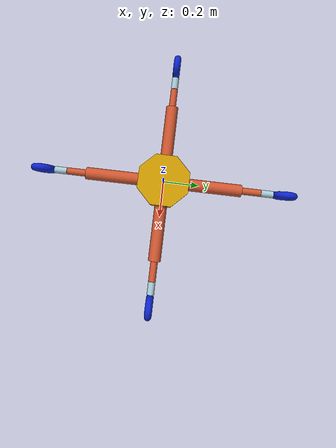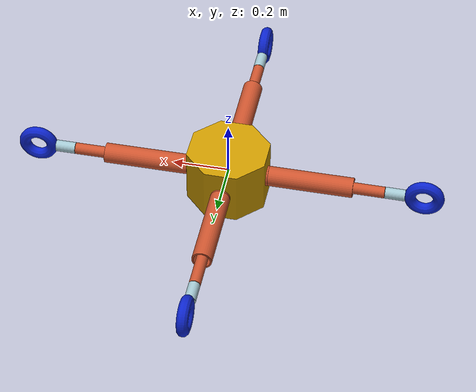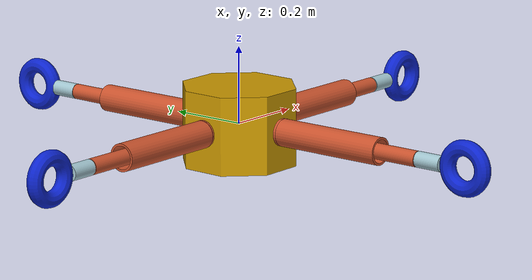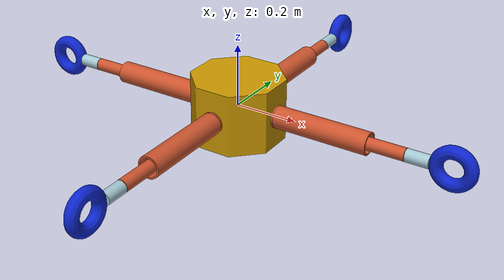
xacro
<?xml version="1.0" ?>
<robot name="starbot" xmlns:xacro="http://ros.org/wiki/xacro">

    <!--- new_gazebo_version should be false by default because pinocchio needs it!-->
    <xacro:arg name="robot_name" default="starbot"/>
    <xacro:arg name="new_gazebo_version" default="false"/>

    <xacro:include filename="$(find starbot_description)/gazebo/gazebo.urdf.xacro">
        <xacro:arg name="task_period" value="$(arg task_period)"/>
	<xacro:arg name="robot_name" value="$(arg robot_name)"/>
    </xacro:include>

    <xacro:include filename="$(find starbot_description)/urdfs/leg.xacro"/>

    <!-- BASE LINK -->
    <!-- floating type is supported in older versions of Gazebo. In new Gazebo if a link has no parent, it is supposed to be attached to a floating joint -->

    <xacro:unless value="$(arg new_gazebo_version)">
        <!-- Floating-base Joint -->
        <link name="world"/>
        <joint name="floating_base_joint" type="floating" >
            <origin rpy="0 0 0" xyz="0 0 0"/>
            <parent link="world"/>
            <child link="base_link"/>
        </joint>
    </xacro:unless>

    <link name="base_link" />
    <joint name="floating_base" type="fixed">
        <origin rpy="0 0 0" xyz="0 0 0"/>
        <parent link="base_link"/>
        <child link="trunk"/>
    </joint>

    <link name="trunk">
        <inertial>
        <origin xyz="0 0 0" rpy="0 0 0"/>
        <mass value="10.0"/>
        <inertia ixx="0.16574" ixy="0" ixz="0" iyy="0.16574" iyz="0" izz="0.24057"/>
      </inertial>
      <visual>
        <origin xyz="0 0 0" rpy="0 0 0"/>
        <geometry>
           <mesh filename="package://starbot_description/meshes/stl/octagon.stl"/>
        </geometry>
        <material name="yellow">
        	<color rgba="0.8 0.6 0.0 1.0"/>
        </material>
      </visual>
      <collision>
            <origin xyz="0 0 0" rpy="0 0 0" />
            <geometry>
                <mesh filename="package://starbot_description/meshes/stl/octagon.stl"/>
            </geometry>
        </collision>

    </link>

    <!-- if we imagine to place a line between the two positive direction of axis x and y -->

    <!-- LEFT FRONT LEG = leg align with axis y -->
     <xacro:leg
    	name="lf"
    	parent="trunk"
    	is_front="true"
    	is_right="false"
    	robot_name="$(arg robot_name)">
    </xacro:leg>

    <!-- RIGHT FRONT LEG = leg align with axis x -->
    <xacro:leg
    	name="rf"
    	parent="trunk"
    	is_front="true"
    	is_right="true"
    	robot_name="$(arg robot_name)">
    </xacro:leg>

    <!-- LEFT HIND LEG = leg align with axis neg x -->
     <xacro:leg
    	name="lh"
    	parent="trunk"
    	is_front="false"
    	is_right="false"
    	robot_name="$(arg robot_name)">
    </xacro:leg>

    <!-- RIGHT HIND LEG = leg align with axis neg y -->
    <xacro:leg
    	name="rh"
    	parent="trunk"
    	is_front="false"
    	is_right="true"
    	robot_name="$(arg robot_name)">
    </xacro:leg>

</robot>

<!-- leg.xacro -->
<robot xmlns:xacro="http://ros.org/wiki/xacro" name="solo">

    <!-- Things that are needed only for Gazebo (not the physical robot). These include sensor and controller plugin specifications -->
    <xacro:include filename="$(find starbot_description)/urdfs/leg.transmission.xacro"/>
    <xacro:include filename="$(find starbot_description)/urdfs/leg.gazebo.xacro"/>

    <!-- These are absoulte distance value, the sign are decided below -->

    <xacro:property name="MAX_TORQUE" value="300" />
    <xacro:property name="MAX_FORCE_LOWERLEG" value="10000" />
    <xacro:property name="SHOULDER" value="0.14142" />
    <xacro:property name="VELOCITY" value="0" />
    <xacro:property name="UPPER_LEG" value="0.15312" />
    <xacro:property name="LOWER_LEG_pos" value="0.02546" />
    <xacro:property name="PRE_WHEEL_pos" value="0.16173" />
    <xacro:property name="WHEEL_pos" value="0.10183" />

    <material name="orange">
     <color rgba="0.800 0.331 0.183 1.0"/>
    </material>

    <material name="blue">
     <color rgba="0.051 0.144 0.800 1.0"/>
    </material>

    <material name="gray">
     <color rgba="0.638 0.779 0.819 1.0"/>
    </material>

    <!-- This macro has for purpose to define a leg -->
    <xacro:macro name="leg" params="name parent is_front is_right robot_name">

        <!-- Starbot 1.0 -->

        <!--BS_JOINT: Joint between the body and the shoulder -->
        <joint name="${name}_bs_joint" type="revolute">
            <parent link="${parent}"/>
            <child link="${name}_shoulder"/>

            <!-- limit and placement of the joint -->
            <xacro:if value="${is_front}">
                <xacro:unless value="${is_right}">
                    <!-- LF_UPPER_LEG_JOINT -->
                    <axis xyz="1 0 0"/>
                    <limit effort="${MAX_TORQUE}" lower="-0.785" upper="0.785" velocity="${VELOCITY}"/>
                    <origin xyz="0 ${SHOULDER}  0" rpy="0 0 0" />
                </xacro:unless>
                <xacro:if value="${is_right}">
                    <!-- RF_UPPER_LEG_JOINT -->
                    <axis xyz="0 1 0"/>
                    <limit effort="${MAX_TORQUE}" lower="-0.785" upper="0.785" velocity="${VELOCITY}"/>
                    <origin xyz="${SHOULDER} 0 0" rpy="0 0 0" />
                </xacro:if>
            </xacro:if>
            <xacro:unless value="${is_front}">
                <xacro:unless value="${is_right}">
                    <!-- LH_UPPER_LEG_JOINT -->
                    <axis xyz="0 -1 0"/>
                    <limit effort="${MAX_TORQUE}" lower="-0.785" upper="0.785" velocity="${VELOCITY}"/>
                    <origin xyz="-${SHOULDER} 0 0" rpy="0 0 0" />
                </xacro:unless>
                <xacro:if value="${is_right}">
                    <!-- RH_UPPER_LEG_JOINT -->
                    <axis xyz="-1 0 0"/>
                    <limit effort="${MAX_TORQUE}" lower="-0.785" upper="0.785" velocity="${VELOCITY}"/>
                    <origin xyz="0 -${SHOULDER} 0" rpy="0 0 0" />
                </xacro:if>
            </xacro:unless>

            <!-- pybullet simulation parameters -->
            <dynamics damping="0.0" friction="0.0"/>
        </joint>

        <!-- SHOULDER ASSEMBLY -->
        <link name="${name}_shoulder">
            <!-- create a dummy shoulder_assembly link to join the two joints -->
            <!--VISUAL-->
            <visual>
            <origin xyz="0 0 0" rpy="0 0 0" />
                <xacro:if value="${is_front}">
                    <xacro:unless value="${is_right}">
                        <!-- LF SHOULDER -->
                        <geometry>
                            <mesh filename="package://starbot_description/meshes/stl/shoulder_y.stl"/>
                        </geometry>
                    </xacro:unless>
                <xacro:if value="${is_right}">
                    <!-- RF SHOULDER-->
                    <geometry>
                        <mesh filename="package://starbot_description/meshes/stl/shoulder_x.stl"/>
                    </geometry>
                    </xacro:if>
                </xacro:if>
                <xacro:unless value="${is_front}">
                    <xacro:unless value="${is_right}">
                        <!-- LH SHOULDER -->
                        <geometry>
                            <mesh filename="package://starbot_description/meshes/stl/shoulder_nx.stl"/>
                        </geometry>
                    </xacro:unless>
                    <xacro:if value="${is_right}">
                        <!-- RH SHOULDER -->
                        <geometry>
                            <mesh filename="package://starbot_description/meshes/stl/shoulder_ny.stl"/>
                        </geometry>
                    </xacro:if>
                </xacro:unless>
                <material name="orange"/>
            </visual>

            <!--COLLISION-->
            <collision>
                <origin xyz="0 0 0" rpy="0 0 0" />
                <xacro:if value="${is_front}">
                    <xacro:unless value="${is_right}">
                        <!-- LF_BS -->
                        <geometry>
                            <mesh filename="package://starbot_description/meshes/stl/shoulder_y.stl"/>
                        </geometry>
                    </xacro:unless>
                    <xacro:if value="${is_right}">
                        <!-- RF_BS -->
                        <geometry>
                            <mesh filename="package://starbot_description/meshes/stl/shoulder_x.stl"/>
                        </geometry>
                    </xacro:if>
                </xacro:if>
                <xacro:unless value="${is_front}">
                    <xacro:unless value="${is_right}">
                        <!-- LH_BS -->
                        <geometry>
                            <mesh filename="package://starbot_description/meshes/stl/shoulder_nx.stl"/>
                        </geometry>
                    </xacro:unless>
                    <xacro:if value="${is_right}">
                        <!-- RH_BS -->
                        <geometry>
                            <mesh filename="package://starbot_description/meshes/stl/shoulder_ny.stl"/>
                        </geometry>
                    </xacro:if>
                </xacro:unless>
            </collision>

            <!--INERTIAL -->
            <inertial>
                <origin xyz="0 0 0" rpy="0 0 0" />
                <mass value="0.0001"/>
                <inertia ixx="0" ixy="0" ixz="0" iyy="0" iyz="0" izz="0"/>
            </inertial>
        </link>

        <!--UPPER LEG JOINT-->

        <joint name="${name}_upper_leg_joint" type="revolute">
            <parent link="${name}_shoulder"/>
            <child link="${name}_upperleg"/>

            <!-- joints rotates around the y-axis -->

            <!-- limit and placement of the joint -->
            <xacro:if value="${is_front}">
                <xacro:unless value="${is_right}">
                    <!-- LF_UPPER_LEG_JOINT -->
                    <axis xyz="0 0 1"/>
                    <limit effort="${MAX_TORQUE}" lower="-0.785" upper="0.785" velocity="${VELOCITY}"/>
                    <origin xyz="0 ${UPPER_LEG} 0" rpy="0 0 0" />
                </xacro:unless>
                <xacro:if value="${is_right}">
                    <!-- RF_UPPER_LEG_JOINT -->
                    <axis xyz="0 0 1"/>
                    <limit effort="${MAX_TORQUE}" lower="-0.785" upper="0.785" velocity="${VELOCITY}"/>
                    <origin xyz="${UPPER_LEG} 0 0" rpy="0 0 0" />
                </xacro:if>
            </xacro:if>
            <xacro:unless value="${is_front}">
                <xacro:unless value="${is_right}">
                    <!-- LH_UPPER_LEG_JOINT -->
                    <axis xyz="0 0 1"/>
                    <limit effort="${MAX_TORQUE}" lower="-0.785" upper="0.785" velocity="${VELOCITY}"/>
                    <origin xyz="-${UPPER_LEG} 0 0" rpy="0 0 0" />
                </xacro:unless>
                <xacro:if value="${is_right}">
                    <!-- RH_UPPER_LEG_JOINT -->
                    <axis xyz="0 0 1"/>
                    <limit effort="${MAX_TORQUE}" lower="-0.785" upper="0.785" velocity="${VELOCITY}"/>
                    <origin xyz="0 -${UPPER_LEG} 0" rpy="0 0 0" />
                </xacro:if>
            </xacro:unless>

            <!-- pybullet simulation parameters -->
            <dynamics damping="0.0" friction="0.0"/>
        </joint>

        <!-- UPPER LEG ASSEMBLY -->
        <link name="${name}_upperleg">
            <!--VISUAL-->
            <visual>
                <origin xyz="0 0 0" rpy="0 0 0" />
                <xacro:if value="${is_front}">
                    <xacro:unless value="${is_right}">
			<!-- LF UPPER_LEG -->
                        <geometry>
                            <mesh filename="package://starbot_description/meshes/stl/upper_leg_y.stl"/>
                        </geometry>
                    </xacro:unless>
                    <xacro:if value="${is_right}">
			<!-- RF UPPER_LEG-->
                        <geometry>
                            <mesh filename="package://starbot_description/meshes/stl/upper_leg_x.stl"/>
                        </geometry>
                        </xacro:if>
                </xacro:if>
                <xacro:unless value="${is_front}">
                    <xacro:unless value="${is_right}">
			<!-- LH UPPER_LEG -->
                        <geometry>
                            <mesh filename="package://starbot_description/meshes/stl/upper_leg_nx.stl"/>
                        </geometry>
                    </xacro:unless>
                    <xacro:if value="${is_right}">
		        <!-- RH UPPER_LEG -->
                        <geometry>
                            <mesh filename="package://starbot_description/meshes/stl/upper_leg_ny.stl"/>
                        </geometry>
                    </xacro:if>
                </xacro:unless>
                <material name="orange"/>
            </visual>

            <!--COLLISION-->
            <collision>

                <xacro:if value="${is_front}">
                    <xacro:unless value="${is_right}">
                        <!-- LF UPPER_LEG -->
			<origin xyz="0 0 0" rpy="0 0 0" />
                        <geometry>
                            <mesh filename="package://starbot_description/meshes/stl/upper_leg_y.stl"/>
                        </geometry>
                    </xacro:unless>
                    <xacro:if value="${is_right}">
                        <!-- RF UPPER_LEG -->
       			<origin xyz="0 0 0" rpy="0 0 0" />
                        <geometry>
                            <mesh filename="package://starbot_description/meshes/stl/upper_leg_x.stl"/>
                        </geometry>
                    </xacro:if>
                </xacro:if>
                <xacro:unless value="${is_front}">
                    <xacro:unless value="${is_right}">
                        <!-- LH UPPER_LEG -->
			<origin xyz="0 0  0" rpy="0 0 0" />
                        <geometry>
                            <mesh filename="package://starbot_description/meshes/stl/upper_leg_nx.stl"/>
                        </geometry>
                    </xacro:unless>
                    <xacro:if value="${is_right}">
                        <!-- RH UPPER_LEG-->
			<origin xyz=" 0 0 0" rpy="0 0 0" />

                        <geometry>
                            <mesh filename="package://starbot_description/meshes/stl/upper_leg_ny.stl"/>
                        </geometry>
                    </xacro:if>
                </xacro:unless>
            </collision>

            <!-- UPPER LEG LINK INERTIAL -->
            <xacro:if value="${is_front}">
                    <xacro:unless value="${is_right}">
                        <!-- LF UPPER_LEG -->
                        <inertial>
                    		<origin xyz="0 ${UPPER_LEG} 0" rpy="0 0 0"/>
                    		<mass value="2.3"/>
                    		<inertia ixx="0.01246" ixy="0" ixz="0" iyy="0.00148" iyz="0" izz="0.01246"/>
                	</inertial>
                    </xacro:unless>
                    <xacro:if value="${is_right}">
                        <!-- RF UPPER_LEG -->
                        <inertial>
                    		<origin xyz="${UPPER_LEG} 0 0" rpy="0 0 0"/>
                    		<mass value="2.3"/>
                    		<inertia ixx="0.00148" ixy="0" ixz="0" iyy="0.01246" iyz="0" izz="0.00148"/>
                	</inertial>
                    </xacro:if>
                </xacro:if>
                <xacro:unless value="${is_front}">
                    <xacro:unless value="${is_right}">
                        <!-- LH UPPER_LEG -->
                        <inertial>
                    		<origin xyz="-${UPPER_LEG} 0 0" rpy="0 0 0"/>
                    		<mass value="2.3"/>
                    		<inertia ixx="0.00148" ixy="0" ixz="0" iyy="0.01246" iyz="0" izz="0.00148"/>
                	</inertial>
                    </xacro:unless>
                    <xacro:if value="${is_right}">
                        <!-- RH UPPER_LEG-->
                        <inertial>
                    		<origin xyz="0 -${UPPER_LEG} 0" rpy="0 0 0"/>
                    		<mass value="2.3"/>
                    		<inertia ixx="0.01246" ixy="0" ixz="0" iyy="0.00148" iyz="0" izz="0.01246"/>
                	</inertial>
                    </xacro:if>
                </xacro:unless>

        </link>

        <!--LOWER LEG JOINT-->

        <joint name="${name}_lower_leg_joint" type="prismatic">
            <parent link="${name}_upperleg"/>
            <child link="${name}_lowerleg"/>

            <!-- limit and placement of the joint -->
            <xacro:if value="${is_front}">
                <xacro:unless value="${is_right}">
                    <!-- LF_LOWER_LEG_JOINT -->
                    <axis xyz="0 1 0"/>
                    <limit effort="${MAX_FORCE_LOWERLEG}" lower="0.02" upper="0.20" velocity="${VELOCITY}"/>
                    <origin xyz="0 ${LOWER_LEG_pos} 0" rpy="0 0 0" />
                </xacro:unless>
                <xacro:if value="${is_right}">
                    <axis xyz="1 0 0"/>
                    <!-- RF_LOWER_LEG_JOINT -->
                    <limit effort="${MAX_FORCE_LOWERLEG}" lower="0.02" upper="0.20" velocity="${VELOCITY}"/>
                    <origin xyz="${LOWER_LEG_pos} 0 0" rpy="0 0 0" />
                </xacro:if>
            </xacro:if>
            <xacro:unless value="${is_front}">
                <xacro:unless value="${is_right}">
                    <axis xyz="-1 0 0"/>
                    <!-- LH_LOWER_LEG_JOINT -->
                    <limit effort="${MAX_FORCE_LOWERLEG}" lower="0.02" upper="0.20" velocity="${VELOCITY}"/>
                    <origin xyz="-${LOWER_LEG_pos} 0 0" rpy="0 0 0" />
                </xacro:unless>
                <xacro:if value="${is_right}">
                    <!-- RF_LOWER_LEG_JOINT -->
                    <axis xyz="0 -1 0"/>
                    <limit effort="${MAX_FORCE_LOWERLEG}" lower="0.02" upper="0.20" velocity="${VELOCITY}"/>
                    <origin xyz="0 -${LOWER_LEG_pos} 0" rpy="0 0 0" />
                </xacro:if>
            </xacro:unless>

            <!-- pybullet simulation parameters -->
            <dynamics damping="0.0" friction="0.0"/>
        </joint>

        <!-- LOWER LEG ASSEMBLY -->
        <link name="${name}_lowerleg">
            <!--VISUAL-->
            <visual>
		<origin xyz="0 0 0" rpy="0 0 0" />
                <xacro:if value="${is_front}">
                    <xacro:unless value="${is_right}">
                        <!-- LF LOWER_LEG -->
                        <geometry>
                            <mesh filename="package://starbot_description/meshes/stl/lower_leg_y.stl"/>
                        </geometry>
                    </xacro:unless>
                    <xacro:if value="${is_right}">
                        <!-- RF LOWER_LEG-->
                        <geometry>
                            <mesh filename="package://starbot_description/meshes/stl/lower_leg_x.stl"/>
                        </geometry>
                    </xacro:if>
                </xacro:if>
                <xacro:unless value="${is_front}">
                    <xacro:unless value="${is_right}">
                        <!-- LH LOWER_LEG -->
                        <geometry>
                            <mesh filename="package://starbot_description/meshes/stl/lower_leg_nx.stl"/>
                        </geometry>
                    </xacro:unless>
                    <xacro:if value="${is_right}">
                        <!-- RH LOWER_LEG -->
                        <geometry>
                            <mesh filename="package://starbot_description/meshes/stl/lower_leg_ny.stl"/>
                        </geometry>
                    </xacro:if>
                </xacro:unless>
                <material name="orange"/>
            </visual>

            <!--COLLISION-->
            <collision>
                <origin xyz="0 0 0" rpy="0 0 0" />
                <xacro:if value="${is_front}">
                    <xacro:unless value="${is_right}">
                        <!-- LF LOWER_LEG -->
                        <geometry>
                            <mesh filename="package://starbot_description/meshes/stl/lower_leg_y.stl"/>
                        </geometry>
                    </xacro:unless>
                    <xacro:if value="${is_right}">
                        <!-- RF LOWER_LEG -->
                        <geometry>
                            <mesh filename="package://starbot_description/meshes/stl/lower_leg_x.stl"/>
                        </geometry>
                    </xacro:if>
                </xacro:if>
                <xacro:unless value="${is_front}">
                    <xacro:unless value="${is_right}">
                        <!-- LH LOWER_LEG -->
                        <geometry>
                            <mesh filename="package://starbot_description/meshes/stl/lower_leg_nx.stl"/>
                        </geometry>
                    </xacro:unless>
                    <xacro:if value="${is_right}">
                        <!-- RH LOWER_LEG-->
                        <geometry>
                            <mesh filename="package://starbot_description/meshes/stl/lower_leg_ny.stl"/>
                        </geometry>
                    </xacro:if>
                </xacro:unless>
            </collision>

            <!-- LOWER LEG LINK INERTIAL -->
            <xacro:if value="${is_front}">
                    <xacro:unless value="${is_right}">
                        <!-- LF LOWER_LEG -->
                        <inertial>
                    		<origin xyz="0 ${LOWER_LEG_pos} 0" rpy="0 0 0"/>
                    		<mass value="2.36"/>
                    		<inertia ixx="0.00767" ixy="0" ixz="0" iyy="0.00056" iyz="0" izz="0.00767"/>
                	</inertial>
                    </xacro:unless>
                    <xacro:if value="${is_right}">
                        <!-- RF LOWER_LEG -->
                        <inertial>
                    		<origin xyz="${LOWER_LEG_pos} 0 0" rpy="0 0 0"/>
                    		<mass value="2.36"/>
                    		<inertia ixx="0.00056" ixy="0" ixz="0" iyy="0.00767" iyz="0" izz="0.00056"/>
                	</inertial>
                    </xacro:if>
                </xacro:if>
                <xacro:unless value="${is_front}">
                    <xacro:unless value="${is_right}">
                        <!-- LH LOWER_LEG -->
                        <inertial>
                    		<origin xyz="-${LOWER_LEG_pos} 0 0" rpy="0 0 0"/>
                    		<mass value="2.36"/>
                    		<inertia ixx="0.00056" ixy="0" ixz="0" iyy="0.00767" iyz="0" izz="0.00056"/>
                	</inertial>
                    </xacro:unless>
                    <xacro:if value="${is_right}">
                        <!-- RH LOWER_LEG-->
                        <inertial>
                    		<origin xyz="0 -${LOWER_LEG_pos} 0" rpy="0 0 0"/>
                    		<mass value="2.36"/>
                    		<inertia ixx="0.00767" ixy="0" ixz="0" iyy="0.00056" iyz="0" izz="0.00767"/>
                	</inertial>
                    </xacro:if>
                </xacro:unless>

        </link>

        <!--PRE WHEEL JOINT-->

        <joint name="${name}_pre_wheel_joint" type="revolute">
            <parent link="${name}_lowerleg"/>
            <child link="${name}_pre_wheel"/>

            <!-- joints rotates around the x-axis (refer to the x-axis align leg) -->

            <!-- limit and placement of the joint -->
            <xacro:if value="${is_front}">
                <xacro:unless value="${is_right}">
                    <!-- LF_PRE_WHEEL_JOINT -->
                    <axis xyz="0 1 0"/>
                    <limit effort="${MAX_TORQUE}" lower="-1.57" upper="1.57" velocity="${VELOCITY}"/>
                    <origin xyz="0 ${PRE_WHEEL_pos} 0" rpy="0 0 0" />
                </xacro:unless>
                <xacro:if value="${is_right}">
                    <axis xyz="1 0 0"/>
                    <!-- RF_PRE_WHEEL_JOINT -->
                    <limit effort="${MAX_TORQUE}" lower="-1.57" upper="1.57" velocity="${VELOCITY}"/>
                    <origin xyz="${PRE_WHEEL_pos} 0 0" rpy="0 0 0" />
                </xacro:if>
            </xacro:if>
            <xacro:unless value="${is_front}">
                <xacro:unless value="${is_right}">
                    <axis xyz="-1 0  0"/>
                    <!-- LH_PRE_WHEEL_JOINT -->
                    <limit effort="${MAX_TORQUE}" lower="-1.57" upper="1.57" velocity="${VELOCITY}"/>
                    <origin xyz="-${PRE_WHEEL_pos} 0 0" rpy="0 0 0" />
                </xacro:unless>
                <xacro:if value="${is_right}">
                    <!-- RF_PRE_WHEEL_JOINT -->
                    <axis xyz="0  -1 0"/>
                    <limit effort="${MAX_TORQUE}" lower="-1.57" upper="1.57" velocity="${VELOCITY}"/>
                    <origin xyz="0 -${PRE_WHEEL_pos} 0" rpy="0 0 0" />
                </xacro:if>
            </xacro:unless>

            <!-- pybullet simulation parameters -->
            <dynamics damping="0.0" friction="0.0"/>
        </joint>

        <!-- PRE WHEEL ASSEMBLY -->
        <link name="${name}_pre_wheel">
            <!--VISUAL-->
            <visual>
                <origin xyz="0 0 0" rpy="0 0 0" />
                <xacro:if value="${is_front}">
                    <xacro:unless value="${is_right}">
                        <!-- LF PRE_WHEEL -->
                        <!--we need mesh geometry otherwise strange behaviour happens-->
                        <geometry>
                            <mesh filename="package://starbot_description/meshes/stl/joint_wheel_y.stl"/>
                        </geometry>
                    </xacro:unless>
                    <xacro:if value="${is_right}">
                        <!-- RF PRE_WHEEL-->
                        <geometry>
                            <mesh filename="package://starbot_description/meshes/stl/joint_wheel_x.stl"/>
                        </geometry>
                    </xacro:if>
                </xacro:if>
                <xacro:unless value="${is_front}">
                    <xacro:unless value="${is_right}">
                        <!-- LH PRE_WHEEL -->
                        <geometry>
                            <mesh filename="package://starbot_description/meshes/stl/joint_wheel_nx.stl"/>
                        </geometry>
                    </xacro:unless>
                    <xacro:if value="${is_right}">
                        <!-- RH PRE_WHEEL -->
                        <geometry>
                            <mesh filename="package://starbot_description/meshes/stl/joint_wheel_ny.stl"/>
                        </geometry>
                    </xacro:if>
                </xacro:unless>
                <material name="gray"/>
            </visual>

            <!--COLLISION-->
            <collision>
                <origin xyz="0 0 0" rpy="0 0 0" />
                <xacro:if value="${is_front}">
                    <xacro:unless value="${is_right}">
                        <!-- LF PRE_WHEEL -->
                        <geometry>
                            <mesh filename="package://starbot_description/meshes/stl/joint_wheel_y.stl"/>
                        </geometry>
                    </xacro:unless>
                    <xacro:if value="${is_right}">
                        <!-- RF PRE_WHEEL -->
                        <geometry>
                            <mesh filename="package://starbot_description/meshes/stl/joint_wheel_x.stl"/>
                        </geometry>
                    </xacro:if>
                </xacro:if>
                <xacro:unless value="${is_front}">
                    <xacro:unless value="${is_right}">
                        <!-- LH PRE_WHEEL -->
                        <geometry>
                            <mesh filename="package://starbot_description/meshes/stl/joint_wheel_nx.stl"/>
                        </geometry>
                    </xacro:unless>
                    <xacro:if value="${is_right}">
                        <!-- RH PRE_WHEEL-->
                        <geometry>
                            <mesh filename="package://starbot_description/meshes/stl/joint_wheel_ny.stl"/>
                        </geometry>
                    </xacro:if>
                </xacro:unless>
            </collision>

            <!-- PRE WHEEL LINK INERTIAL -->
            <xacro:if value="${is_front}">
                    <xacro:unless value="${is_right}">
                        <!-- PRE_WHEEL_LEG -->
                        <inertial>
                    		<origin xyz="0 ${PRE_WHEEL_pos} 0" rpy="0 0 0"/>
                    		<mass value="0.66"/>
                    		<inertia ixx="0.00024" ixy="0" ixz="0" iyy="0.00016" iyz="0" izz="0.00024"/>
                	</inertial>
                    </xacro:unless>
                    <xacro:if value="${is_right}">
                        <!-- PRE_WHEEL_LEG -->
                        <inertial>
                    		<origin xyz="${PRE_WHEEL_pos} 0 0" rpy="0 0 0"/>
                    		<mass value="0.66"/>
                    		<inertia ixx="0.00016" ixy="0" ixz="0" iyy="0.00024" iyz="0" izz="0.00016"/>
                	</inertial>
                    </xacro:if>
                </xacro:if>
                <xacro:unless value="${is_front}">
                    <xacro:unless value="${is_right}">
                        <!-- PRE_WHEEL_LEG -->
                        <inertial>
                    		<origin xyz="-${PRE_WHEEL_pos} 0 0" rpy="0 0 0"/>
                    		<mass value="0.66"/>
                    		<inertia ixx="0.00016" ixy="0" ixz="0" iyy="0.00024" iyz="0" izz="0.00016"/>
                	</inertial>
                    </xacro:unless>
                    <xacro:if value="${is_right}">
                        <!-- PRE_WHEEL_LEG-->
                        <inertial>
                    		<origin xyz="0 -${PRE_WHEEL_pos} 0" rpy="0 0 0"/>
                    		<mass value="0.66"/>
                    		<inertia ixx="0.00024" ixy="0" ixz="0" iyy="0.00016" iyz="0" izz="0.00024"/>
                	</inertial>
                    </xacro:if>
                </xacro:unless>

        </link>

        <!--WHEEL JOINT-->

        <joint name="${name}_wheel_joint" type="revolute">
            <parent link="${name}_pre_wheel"/>
            <child link="${name}_wheel"/>

            <!-- joints rotates around the x-axis (refer to the x-axis align leg) -->

            <!-- limit and placement of the joint -->
            <xacro:if value="${is_front}">
                <xacro:unless value="${is_right}">
                    <!-- LF_WHEEL_JOINT -->
                    <axis xyz="1 0 0"/>
                    <origin xyz="0 ${WHEEL_pos} 0" rpy="0 0 0" />
                </xacro:unless>
                <xacro:if value="${is_right}">
                    <axis xyz="0 1 0"/>
                    <!-- RF_WHEEL_JOINT -->
                    <origin xyz="${WHEEL_pos} 0 0" rpy="0 0 0" />
                </xacro:if>
            </xacro:if>
            <xacro:unless value="${is_front}">
                <xacro:unless value="${is_right}">
                    <axis xyz="0 -1 0"/>
                    <!-- LH_WHEEL_JOINT -->
                    <origin xyz="-${WHEEL_pos} 0 0" rpy="0 0 0" />
                </xacro:unless>
                <xacro:if value="${is_right}">
                    <!-- RF_WHEEL_JOINT -->
                    <axis xyz="-1 0 0"/>
                    <origin xyz="0 -${WHEEL_pos} 0" rpy="0 0 0" />
                </xacro:if>
            </xacro:unless>

            <limit effort="100" lower="-1e10" upper="1e10" velocity="100"/>
            <!-- pybullet simulation parameters -->
            <dynamics damping="0.0" friction="0.0"/>
        </joint>

        <!-- WHEEL ASSEMBLY -->
        <link name="${name}_wheel">
            <!--VISUAL-->
            <visual>
                <origin xyz="0 0 0" rpy="0 0 0" />
                <xacro:if value="${is_front}">
                    <xacro:unless value="${is_right}">
                        <!-- LF WHEEL -->
                        <!--we need mesh geometry otherwise strange behaviour happens-->
                        <geometry>
                            <mesh filename="package://starbot_description/meshes/stl/wheel_y.stl"/>
                        </geometry>
                    </xacro:unless>
                    <xacro:if value="${is_right}">
                        <!-- RF WHEEL-->
                        <geometry>
                            <mesh filename="package://starbot_description/meshes/stl/wheel_x.stl"/>
                        </geometry>
                    </xacro:if>
                </xacro:if>
                <xacro:unless value="${is_front}">
                    <xacro:unless value="${is_right}">
                        <!-- LH WHEEL -->
                        <geometry>
                            <mesh filename="package://starbot_description/meshes/stl/wheel_nx.stl"/>
                        </geometry>
                    </xacro:unless>
                    <xacro:if value="${is_right}">
                        <!-- RH WHEEL -->
                        <geometry>
                            <mesh filename="package://starbot_description/meshes/stl/wheel_ny.stl"/>
                        </geometry>
                    </xacro:if>
                </xacro:unless>
                <material name="blue"/>
            </visual>

            <!--COLLISION-->
            <collision>
                <origin xyz="0 0 0" rpy="0 0 0" />
                <xacro:if value="${is_front}">
                    <xacro:unless value="${is_right}">
                        <!-- LF WHEEL -->
                        <geometry>
                            <mesh filename="package://starbot_description/meshes/stl/wheel_y.stl"/>
                        </geometry>
                    </xacro:unless>
                    <xacro:if value="${is_right}">
                        <!-- RF WHEEL -->
                        <geometry>
                            <mesh filename="package://starbot_description/meshes/stl/wheel_x.stl"/>
                        </geometry>
                    </xacro:if>
                </xacro:if>
                <xacro:unless value="${is_front}">
                    <xacro:unless value="${is_right}">
                        <!-- LH WHEEL -->
                        <geometry>
                            <mesh filename="package://starbot_description/meshes/stl/wheel_nx.stl"/>
                        </geometry>
                    </xacro:unless>
                    <xacro:if value="${is_right}">
                        <!-- RH WHEEL-->
                        <geometry>
                            <mesh filename="package://starbot_description/meshes/stl/wheel_ny.stl"/>
                        </geometry>
                    </xacro:if>
                </xacro:unless>
            </collision>

            <!-- WHEEL LINK INERTIAL -->
            <xacro:if value="${is_front}">
                    <xacro:unless value="${is_right}">
                        <!-- PRE_WHEEL_LEG -->
                        <inertial>
                    		<origin xyz="0 ${WHEEL_pos} 0" rpy="0 0 0"/>
                    		<mass value="1.0"/>
                    		<inertia ixx="0.00224" ixy="0" ixz="0" iyy="0.00121" iyz="0" izz="0.00224"/>
                	</inertial>
                    </xacro:unless>
                    <xacro:if value="${is_right}">
                        <!-- PRE_WHEEL_LEG -->
                        <inertial>
                    		<origin xyz="${WHEEL_pos} 0 0" rpy="0 0 0"/>
                    		<mass value="1.0"/>
                    		<inertia ixx="0.00121" ixy="0" ixz="0" iyy="0.00224" iyz="0" izz="0.00121"/>
                	</inertial>
                    </xacro:if>
                </xacro:if>
                <xacro:unless value="${is_front}">
                    <xacro:unless value="${is_right}">
                        <!-- PRE_WHEEL_LEG -->
                        <inertial>
                    		<origin xyz="-${WHEEL_pos}  0 0" rpy="0 0 0"/>
                    		<mass value="1.0"/>
                    		<inertia ixx="0.00121" ixy="0" ixz="0" iyy="0.00224" iyz="0" izz="0.00121"/>
                	</inertial>
                    </xacro:unless>
                    <xacro:if value="${is_right}">
                        <!-- PRE_WHEEL_LEG-->
                        <inertial>
                    		<origin xyz="0 -${WHEEL_pos} 0" rpy="0 0 0"/>
                    		<mass value="1.0"/>
                    		<inertia ixx="0.00224" ixy="0" ixz="0" iyy="0.00121" iyz="0" izz="0.00224"/>
                	</inertial>
                    </xacro:if>
                </xacro:unless>

        </link>

        <!-- Extensions -->
        <xacro:leg_transmission name="${name}"/>
        <xacro:leg_gazebo name="${name}" robot_name="${robot_name}"/>
    </xacro:macro>
</robot>
